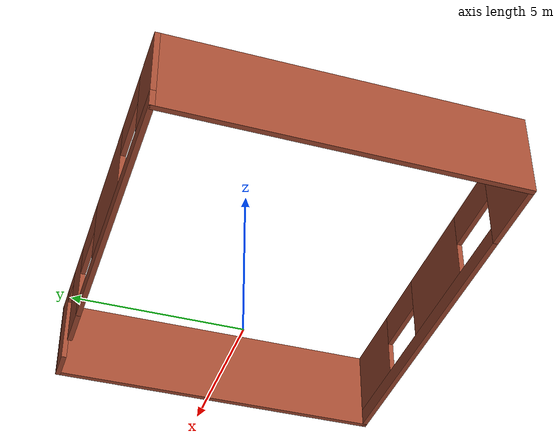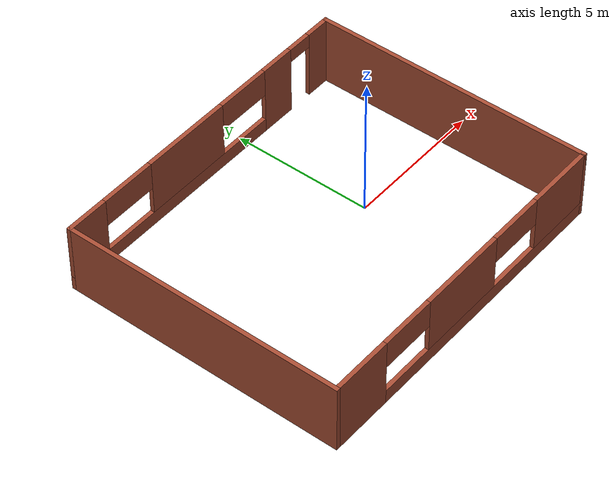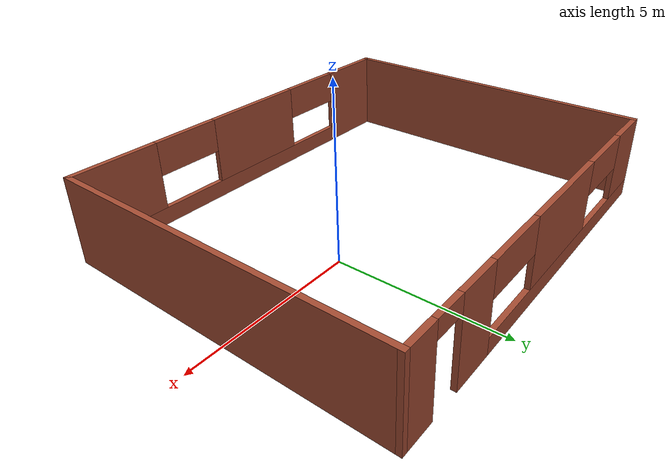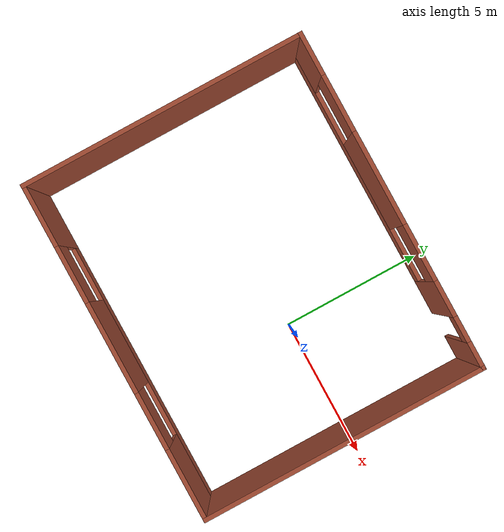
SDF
<?xml version='1.0'?>
<sdf version='1.6'>
  <model name='classroom1'>
    <pose frame=''>-2.035 -0.275 0 0 -0 0</pose>
    <link name='Wall_10'>
      <collision name='Wall_10_Collision'>
        <geometry>
          <box>
            <size>10 0.15 2.5</size>
          </box>
        </geometry>
        <pose frame=''>0 0 1.25 0 -0 0</pose>
      </collision>
      <visual name='Wall_10_Visual'>
        <pose frame=''>0 0 1.25 0 -0 0</pose>
        <geometry>
          <box>
            <size>10 0.15 2.5</size>
          </box>
        </geometry>
        <material>
          <script>
            <uri>file://media/materials/scripts/gazebo.material</uri>
            <name>Gazebo/Bricks</name>
          </script>
          <ambient>1 1 1 1</ambient>
        </material>
        <meta>
          <layer>0</layer>
        </meta>
      </visual>
      <pose frame=''>5.925 0 0 0 -0 1.5708</pose>
    </link>
    <link name='Wall_11'>
      <pose frame=''>0 4.925 0 0 -0 3.14159</pose>
      <visual name='Wall_11_Visual_0'>
        <pose frame=''>-5.49695 0 1.25 0 -0 0</pose>
        <geometry>
          <box>
            <size>1.0061 0.15 2.5</size>
          </box>
        </geometry>
        <material>
          <script>
            <uri>file://media/materials/scripts/gazebo.material</uri>
            <name>Gazebo/Bricks</name>
          </script>
          <ambient>1 1 1 1</ambient>
        </material>
        <meta>
          <layer>0</layer>
        </meta>
      </visual>
      <collision name='Wall_11_Collision_0'>
        <geometry>
          <box>
            <size>1.0061 0.15 2.5</size>
          </box>
        </geometry>
        <pose frame=''>-5.49695 0 1.25 0 -0 0</pose>
      </collision>
      <visual name='Wall_11_Visual_1'>
        <pose frame=''>-3.45764 0 1.25 0 -0 0</pose>
        <geometry>
          <box>
            <size>1.27253 0.15 2.5</size>
          </box>
        </geometry>
        <material>
          <script>
            <uri>file://media/materials/scripts/gazebo.material</uri>
            <name>Gazebo/Bricks</name>
          </script>
          <ambient>1 1 1 1</ambient>
        </material>
        <meta>
          <layer>0</layer>
        </meta>
      </visual>
      <collision name='Wall_11_Collision_1'>
        <geometry>
          <box>
            <size>1.27253 0.15 2.5</size>
          </box>
        </geometry>
        <pose frame=''>-3.45764 0 1.25 0 -0 0</pose>
      </collision>
      <visual name='Wall_11_Visual_2'>
        <pose frame=''>1.58932 0 0.25 0 -0 0</pose>
        <geometry>
          <box>
            <size>8.82137 0.15 0.5</size>
          </box>
        </geometry>
        <material>
          <script>
            <uri>file://media/materials/scripts/gazebo.material</uri>
            <name>Gazebo/Bricks</name>
          </script>
          <ambient>1 1 1 1</ambient>
        </material>
        <meta>
          <layer>0</layer>
        </meta>
      </visual>
      <collision name='Wall_11_Collision_2'>
        <geometry>
          <box>
            <size>8.82137 0.15 0.5</size>
          </box>
        </geometry>
        <pose frame=''>1.58932 0 0.25 0 -0 0</pose>
      </collision>
      <visual name='Wall_11_Visual_3'>
        <pose frame=''>0.824684 0 1.5 0 -0 0</pose>
        <geometry>
          <box>
            <size>3.29211 0.15 2</size>
          </box>
        </geometry>
        <material>
          <script>
            <uri>file://media/materials/scripts/gazebo.material</uri>
            <name>Gazebo/Bricks</name>
          </script>
          <ambient>1 1 1 1</ambient>
        </material>
        <meta>
          <layer>0</layer>
        </meta>
      </visual>
      <collision name='Wall_11_Collision_3'>
        <geometry>
          <box>
            <size>3.29211 0.15 2</size>
          </box>
        </geometry>
        <pose frame=''>0.824684 0 1.5 0 -0 0</pose>
      </collision>
      <visual name='Wall_11_Visual_4'>
        <pose frame=''>5.23537 0 1.5 0 -0 0</pose>
        <geometry>
          <box>
            <size>1.52926 0.15 2</size>
          </box>
        </geometry>
        <material>
          <script>
            <uri>file://media/materials/scripts/gazebo.material</uri>
            <name>Gazebo/Bricks</name>
          </script>
          <ambient>1 1 1 1</ambient>
        </material>
        <meta>
          <layer>0</layer>
        </meta>
      </visual>
      <collision name='Wall_11_Collision_4'>
        <geometry>
          <box>
            <size>1.52926 0.15 2</size>
          </box>
        </geometry>
        <pose frame=''>5.23537 0 1.5 0 -0 0</pose>
      </collision>
      <visual name='Wall_11_Visual_5'>
        <pose frame=''>-1.82137 0 2 0 -0 0</pose>
        <geometry>
          <box>
            <size>2 0.15 1</size>
          </box>
        </geometry>
        <material>
          <script>
            <uri>file://media/materials/scripts/gazebo.material</uri>
            <name>Gazebo/Bricks</name>
          </script>
          <ambient>1 1 1 1</ambient>
        </material>
        <meta>
          <layer>0</layer>
        </meta>
      </visual>
      <collision name='Wall_11_Collision_5'>
        <geometry>
          <box>
            <size>2 0.15 1</size>
          </box>
        </geometry>
        <pose frame=''>-1.82137 0 2 0 -0 0</pose>
      </collision>
      <visual name='Wall_11_Visual_6'>
        <pose frame=''>3.47074 0 2 0 -0 0</pose>
        <geometry>
          <box>
            <size>2 0.15 1</size>
          </box>
        </geometry>
        <material>
          <script>
            <uri>file://media/materials/scripts/gazebo.material</uri>
            <name>Gazebo/Bricks</name>
          </script>
          <ambient>1 1 1 1</ambient>
        </material>
        <meta>
          <layer>0</layer>
        </meta>
      </visual>
      <collision name='Wall_11_Collision_6'>
        <geometry>
          <box>
            <size>2 0.15 1</size>
          </box>
        </geometry>
        <pose frame=''>3.47074 0 2 0 -0 0</pose>
      </collision>
      <visual name='Wall_11_Visual_7'>
        <pose frame=''>-4.5439 0 2.25 0 -0 0</pose>
        <geometry>
          <box>
            <size>0.9 0.15 0.5</size>
          </box>
        </geometry>
        <material>
          <script>
            <uri>file://media/materials/scripts/gazebo.material</uri>
            <name>Gazebo/Bricks</name>
          </script>
          <ambient>1 1 1 1</ambient>
        </material>
        <meta>
          <layer>0</layer>
        </meta>
      </visual>
      <collision name='Wall_11_Collision_7'>
        <geometry>
          <box>
            <size>0.9 0.15 0.5</size>
          </box>
        </geometry>
        <pose frame=''>-4.5439 0 2.25 0 -0 0</pose>
      </collision>
    </link>
    <link name='Wall_12'>
      <collision name='Wall_12_Collision'>
        <geometry>
          <box>
            <size>10 0.15 2.5</size>
          </box>
        </geometry>
        <pose frame=''>0 0 1.25 0 -0 0</pose>
      </collision>
      <visual name='Wall_12_Visual'>
        <pose frame=''>0 0 1.25 0 -0 0</pose>
        <geometry>
          <box>
            <size>10 0.15 2.5</size>
          </box>
        </geometry>
        <material>
          <script>
            <uri>file://media/materials/scripts/gazebo.material</uri>
            <name>Gazebo/Bricks</name>
          </script>
          <ambient>1 1 1 1</ambient>
        </material>
        <meta>
          <layer>0</layer>
        </meta>
      </visual>
      <pose frame=''>-5.925 0 0 0 -0 -1.5708</pose>
    </link>
    <link name='Wall_6'>
      <pose frame=''>0 -4.925 0 0 -0 0</pose>
      <visual name='Wall_6_Visual_0'>
        <pose frame=''>-4.88358 0 1.25 0 -0 0</pose>
        <geometry>
          <box>
            <size>2.23284 0.15 2.5</size>
          </box>
        </geometry>
        <material>
          <script>
            <uri>file://media/materials/scripts/gazebo.material</uri>
            <name>Gazebo/Bricks</name>
          </script>
          <ambient>1 1 1 1</ambient>
        </material>
        <meta>
          <layer>0</layer>
        </meta>
      </visual>
      <collision name='Wall_6_Collision_0'>
        <geometry>
          <box>
            <size>2.23284 0.15 2.5</size>
          </box>
        </geometry>
        <pose frame=''>-4.88358 0 1.25 0 -0 0</pose>
      </collision>
      <visual name='Wall_6_Visual_1'>
        <pose frame=''>1.11642 0 0.25 0 -0 0</pose>
        <geometry>
          <box>
            <size>9.76716 0.15 0.5</size>
          </box>
        </geometry>
        <material>
          <script>
            <uri>file://media/materials/scripts/gazebo.material</uri>
            <name>Gazebo/Bricks</name>
          </script>
          <ambient>1 1 1 1</ambient>
        </material>
        <meta>
          <layer>0</layer>
        </meta>
      </visual>
      <collision name='Wall_6_Collision_1'>
        <geometry>
          <box>
            <size>9.76716 0.15 0.5</size>
          </box>
        </geometry>
        <pose frame=''>1.11642 0 0.25 0 -0 0</pose>
      </collision>
      <visual name='Wall_6_Visual_2'>
        <pose frame=''>-0.166995 0 1.5 0 -0 0</pose>
        <geometry>
          <box>
            <size>3.20034 0.15 2</size>
          </box>
        </geometry>
        <material>
          <script>
            <uri>file://media/materials/scripts/gazebo.material</uri>
            <name>Gazebo/Bricks</name>
          </script>
          <ambient>1 1 1 1</ambient>
        </material>
        <meta>
          <layer>0</layer>
        </meta>
      </visual>
      <collision name='Wall_6_Collision_2'>
        <geometry>
          <box>
            <size>3.20034 0.15 2</size>
          </box>
        </geometry>
        <pose frame=''>-0.166995 0 1.5 0 -0 0</pose>
      </collision>
      <visual name='Wall_6_Visual_3'>
        <pose frame=''>4.71659 0 1.5 0 -0 0</pose>
        <geometry>
          <box>
            <size>2.56683 0.15 2</size>
          </box>
        </geometry>
        <material>
          <script>
            <uri>file://media/materials/scripts/gazebo.material</uri>
            <name>Gazebo/Bricks</name>
          </script>
          <ambient>1 1 1 1</ambient>
        </material>
        <meta>
          <layer>0</layer>
        </meta>
      </visual>
      <collision name='Wall_6_Collision_3'>
        <geometry>
          <box>
            <size>2.56683 0.15 2</size>
          </box>
        </geometry>
        <pose frame=''>4.71659 0 1.5 0 -0 0</pose>
      </collision>
      <visual name='Wall_6_Visual_4'>
        <pose frame=''>-2.76716 0 2 0 -0 0</pose>
        <geometry>
          <box>
            <size>2 0.15 1</size>
          </box>
        </geometry>
        <material>
          <script>
            <uri>file://media/materials/scripts/gazebo.material</uri>
            <name>Gazebo/Bricks</name>
          </script>
          <ambient>1 1 1 1</ambient>
        </material>
        <meta>
          <layer>0</layer>
        </meta>
      </visual>
      <collision name='Wall_6_Collision_4'>
        <geometry>
          <box>
            <size>2 0.15 1</size>
          </box>
        </geometry>
        <pose frame=''>-2.76716 0 2 0 -0 0</pose>
      </collision>
      <visual name='Wall_6_Visual_5'>
        <pose frame=''>2.43317 0 2 0 -0 0</pose>
        <geometry>
          <box>
            <size>2 0.15 1</size>
          </box>
        </geometry>
        <material>
          <script>
            <uri>file://media/materials/scripts/gazebo.material</uri>
            <name>Gazebo/Bricks</name>
          </script>
          <ambient>1 1 1 1</ambient>
        </material>
        <meta>
          <layer>0</layer>
        </meta>
      </visual>
      <collision name='Wall_6_Collision_5'>
        <geometry>
          <box>
            <size>2 0.15 1</size>
          </box>
        </geometry>
        <pose frame=''>2.43317 0 2 0 -0 0</pose>
      </collision>
    </link>
    <static>1</static>
  </model>
</sdf>
